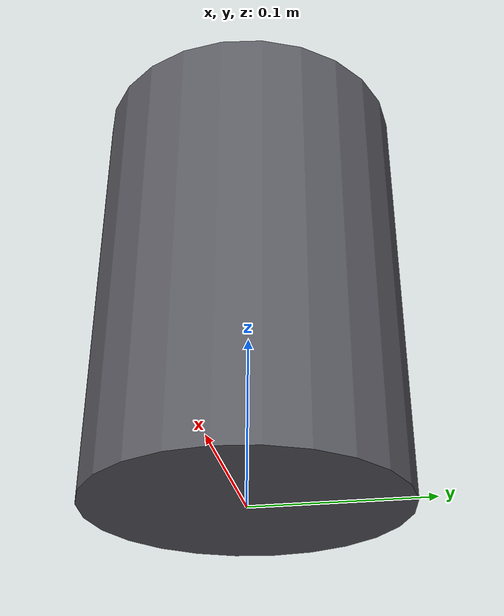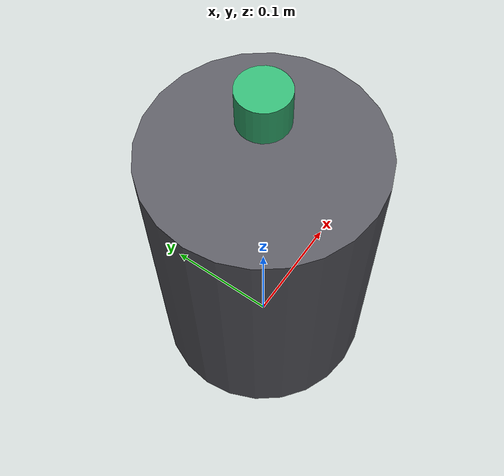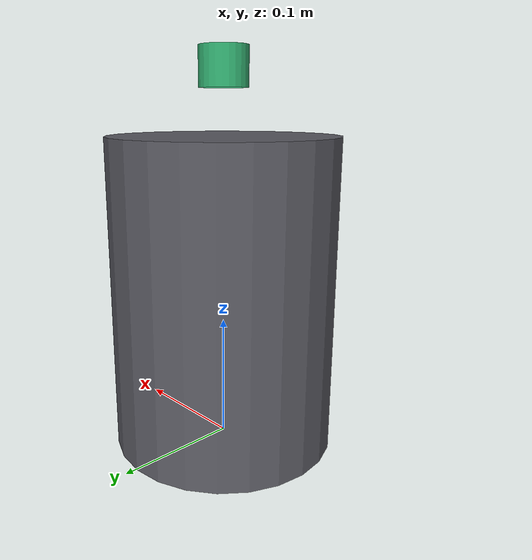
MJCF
<mujoco model="fingertip_disk_free">
  <worldbody>
    <body name="object">
      <!-- Stand: bottom on the table top, i.e. 0.001 below the body origin. -->
      <geom name="fingertip_disk_free_pedestal" type="cylinder" size="0.090 0.125"
            pos="0 0 0.124" mass="100"
            contype="1" conaffinity="1" condim="4" friction="1 0.5 0.01"
            rgba="0.35 0.35 0.38 1"/>

      <body name="disk" pos="0 0 0.299" gravcomp="1">
        <joint name="fingertip_disk_free_sx" type="slide" axis="1 0 0" range="-0.25 0.25"
               stiffness="150" damping="30"/>
        <joint name="fingertip_disk_free_sy" type="slide" axis="0 1 0" range="-0.25 0.25"
               stiffness="150" damping="30"/>
        <joint name="fingertip_disk_free_sz" type="slide" axis="0 0 1" range="-0.15 0.15"
               stiffness="150" damping="30"/>
        <joint name="fingertip_disk_free_ball" type="ball" stiffness="0.5" damping="0.2"/>
        <geom name="fingertip_disk_free_disk" type="cylinder" size="0.019 0.015" mass="2"
              contype="1" conaffinity="1" condim="4" friction="1 0.5 0.01"
              rgba="0.20 0.70 0.45 1"/>
      </body>
    </body>
  </worldbody>
</mujoco>
